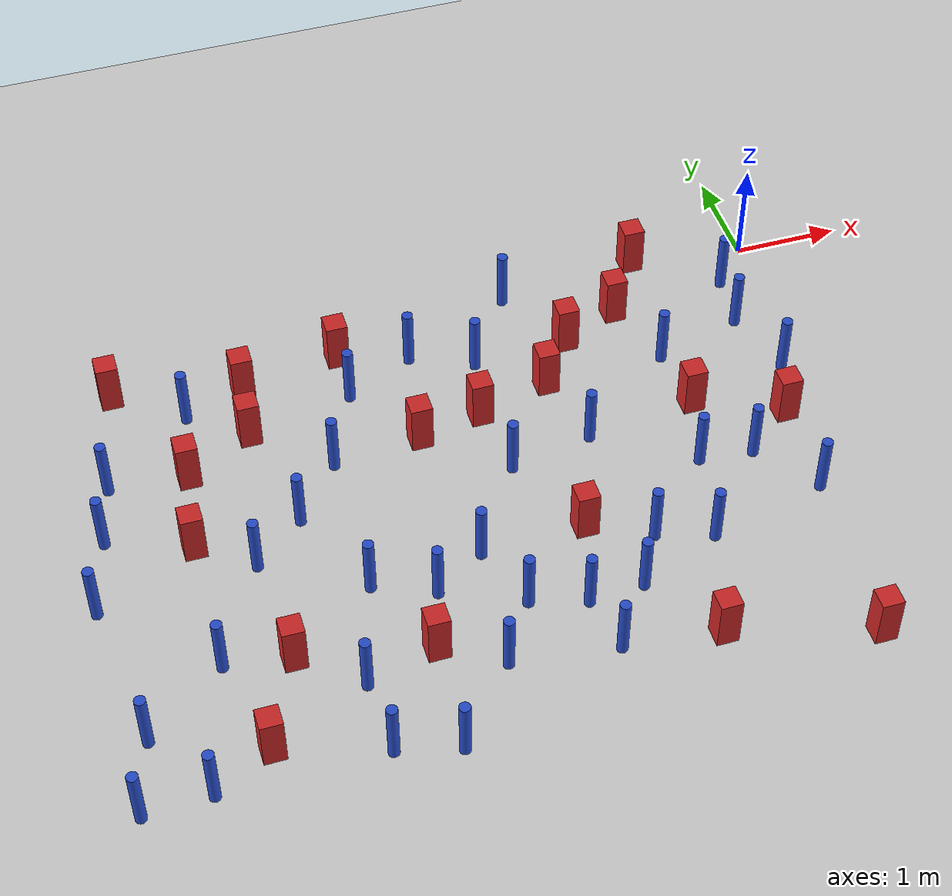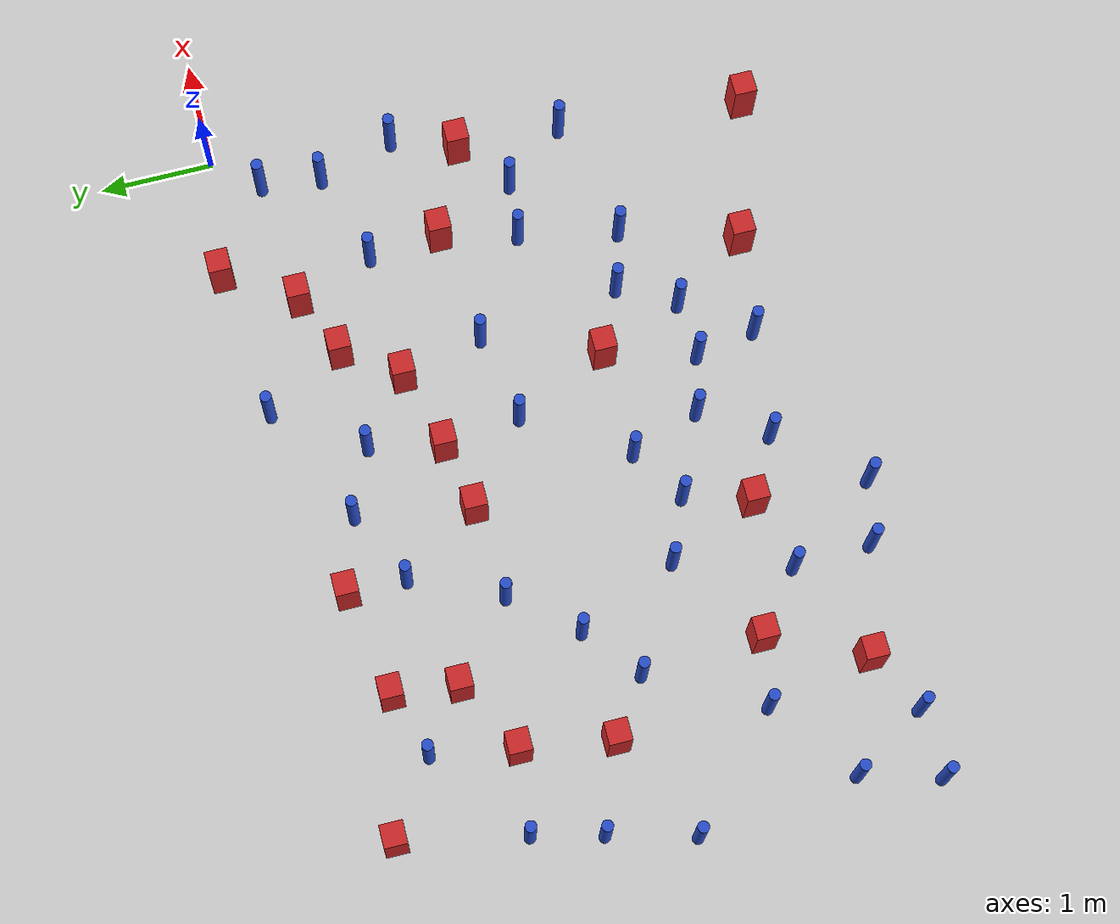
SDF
<sdf version="1.6">
 <world name="default">
  <model name="ground_plane">
   <static>1</static>
   <link name="link">
    <collision name="collision">
     <geometry><plane><normal>0 0 1</normal><size>100 100</size></plane></geometry>
     <surface><friction><ode><mu>100</mu><mu2>50</mu2></ode></friction></surface>
    </collision>
    <visual name="visual">
     <cast_shadows>0</cast_shadows>
     <geometry><plane><normal>0 0 1</normal><size>100 100</size></plane></geometry>
     <material>
      <ambient>1.0 1.0 1.0 1.0</ambient>
      <diffuse>0.8 0.8 0.8 1.0</diffuse>
      <specular>0.01 0.01 0.01 1.000000</specular>
     </material>
    </visual>
   </link>
  </model>
  <model name="pole_obstacle7">
   <static>true</static>
   <pose>-5.98293886818 -3.4617956946 7.38925637345e-09 -8.47170692798e-08 1.24976764937e-08 -1.74513093023e-07</pose>
   <link name="link">
    <pose>0 0 0.3 0 -0 0</pose>
    <inertial>
     <mass>1</mass>
     <inertia><ixx>0.145833</ixx><ixy>0</ixy><ixz>0</ixz><iyy>0.145833</iyy><iyz>0</iyz><izz>0.125</izz></inertia>
    </inertial>
    <collision name="collision">
     <geometry><cylinder><radius>0.05</radius><length>.6</length></cylinder></geometry>
    </collision>
    <visual name="visual">
     <geometry><cylinder><radius>0.05</radius><length>.6</length></cylinder></geometry>
     <material>
      <script><name>Gazebo/Blue</name><uri>file://media/materials/scripts/gazebo.material</uri></script>
     </material>
    </visual>
   </link>
  </model>
  <model name="square_post_obstacle9">
   <static>true</static>
   <pose>-2.40668371716 -1.18963300212 1.91545236811e-07 -7.35059704564e-06 1.12565212e-07 2.39332434364e-05</pose>
   <link name="link">
    <pose>0 0 0.25 0 -0 0</pose>
    <inertial>
     <mass>100</mass>
     <inertia>
      <ixx>0.166667</ixx>
      <ixy>0</ixy>
      <ixz>0</ixz>
      <iyy>0.166667</iyy>
      <iyz>0</iyz>
      <izz>0.166667</izz>
     </inertia>
    </inertial>
    <collision name="collision"><geometry><box><size>.2 .2 .5</size></box></geometry></collision>
    <visual name="visual">
     <geometry><box><size>.2 .2 .5</size></box></geometry>
     <material>
      <script><name>Gazebo/Red</name><uri>file://media/materials/scripts/gazebo.material</uri></script>
     </material>
    </visual>
   </link>
  </model>
  <model name="pole_obstacle18">
   <static>true</static>
   <pose>-4.05215169007 -3.24766723732 7.38925637345e-09 -8.47170692798e-08 1.24976764937e-08 -1.74513093023e-07</pose>
   <link name="link">
    <pose>0 0 0.3 0 -0 0</pose>
    <inertial>
     <mass>1</mass>
     <inertia><ixx>0.145833</ixx><ixy>0</ixy><ixz>0</ixz><iyy>0.145833</iyy><iyz>0</iyz><izz>0.125</izz></inertia>
    </inertial>
    <collision name="collision">
     <geometry><cylinder><radius>0.05</radius><length>.6</length></cylinder></geometry>
    </collision>
    <visual name="visual">
     <geometry><cylinder><radius>0.05</radius><length>.6</length></cylinder></geometry>
     <material>
      <script><name>Gazebo/Blue</name><uri>file://media/materials/scripts/gazebo.material</uri></script>
     </material>
    </visual>
   </link>
  </model>
  <model name="pole_obstacle27">
   <static>true</static>
   <pose>-2.4580968161 0.00251053062653 7.38925637345e-09 -8.47170692799e-08 1.24976765106e-08 -1.74513093016e-07</pose>
   <link name="link">
    <pose>0 0 0.3 0 -0 0</pose>
    <inertial>
     <mass>1</mass>
     <inertia><ixx>0.145833</ixx><ixy>0</ixy><ixz>0</ixz><iyy>0.145833</iyy><iyz>0</iyz><izz>0.125</izz></inertia>
    </inertial>
    <collision name="collision">
     <geometry><cylinder><radius>0.05</radius><length>.6</length></cylinder></geometry>
    </collision>
    <visual name="visual">
     <geometry><cylinder><radius>0.05</radius><length>.6</length></cylinder></geometry>
     <material>
      <script><name>Gazebo/Blue</name><uri>file://media/materials/scripts/gazebo.material</uri></script>
     </material>
    </visual>
   </link>
  </model>
  <model name="square_post_obstacle32">
   <static>true</static>
   <pose>-1.19804286031 -1.80554600768 1.91545236811e-07 -7.35059704564e-06 1.12565212e-07 2.39332434364e-05</pose>
   <link name="link">
    <pose>0 0 0.25 0 -0 0</pose>
    <inertial>
     <mass>100</mass>
     <inertia>
      <ixx>0.166667</ixx>
      <ixy>0</ixy>
      <ixz>0</ixz>
      <iyy>0.166667</iyy>
      <iyz>0</iyz>
      <izz>0.166667</izz>
     </inertia>
    </inertial>
    <collision name="collision"><geometry><box><size>.2 .2 .5</size></box></geometry></collision>
    <visual name="visual">
     <geometry><box><size>.2 .2 .5</size></box></geometry>
     <material>
      <script><name>Gazebo/Red</name><uri>file://media/materials/scripts/gazebo.material</uri></script>
     </material>
    </visual>
   </link>
  </model>
  <model name="pole_obstacle28">
   <static>true</static>
   <pose>-3.53265987745 -0.489491937113 7.38925637345e-09 -8.47170692795e-08 1.2497676475e-08 -1.74513093036e-07</pose>
   <link name="link">
    <pose>0 0 0.3 0 -0 0</pose>
    <inertial>
     <mass>1</mass>
     <inertia><ixx>0.145833</ixx><ixy>0</ixy><ixz>0</ixz><iyy>0.145833</iyy><iyz>0</iyz><izz>0.125</izz></inertia>
    </inertial>
    <collision name="collision">
     <geometry><cylinder><radius>0.05</radius><length>.6</length></cylinder></geometry>
    </collision>
    <visual name="visual">
     <geometry><cylinder><radius>0.05</radius><length>.6</length></cylinder></geometry>
     <material>
      <script><name>Gazebo/Blue</name><uri>file://media/materials/scripts/gazebo.material</uri></script>
     </material>
    </visual>
   </link>
  </model>
  <model name="square_post_obstacle34">
   <static>true</static>
   <pose>-3.71162440864 -1.49970045305 1.91545236811e-07 -7.35059704564e-06 1.12565212e-07 2.39332434364e-05</pose>
   <link name="link">
    <pose>0 0 0.25 0 -0 0</pose>
    <inertial>
     <mass>100</mass>
     <inertia>
      <ixx>0.166667</ixx>
      <ixy>0</ixy>
      <ixz>0</ixz>
      <iyy>0.166667</iyy>
      <iyz>0</iyz>
      <izz>0.166667</izz>
     </inertia>
    </inertial>
    <collision name="collision"><geometry><box><size>.2 .2 .5</size></box></geometry></collision>
    <visual name="visual">
     <geometry><box><size>.2 .2 .5</size></box></geometry>
     <material>
      <script><name>Gazebo/Red</name><uri>file://media/materials/scripts/gazebo.material</uri></script>
     </material>
    </visual>
   </link>
  </model>
  <model name="pole_obstacle30">
   <static>true</static>
   <pose>-0.873470017801 -2.5337336972 7.38925637345e-09 -8.47170692799e-08 1.2497676509e-08 -1.74513093016e-07</pose>
   <link name="link">
    <pose>0 0 0.3 0 -0 0</pose>
    <inertial>
     <mass>1</mass>
     <inertia><ixx>0.145833</ixx><ixy>0</ixy><ixz>0</ixz><iyy>0.145833</iyy><iyz>0</iyz><izz>0.125</izz></inertia>
    </inertial>
    <collision name="collision">
     <geometry><cylinder><radius>0.05</radius><length>.6</length></cylinder></geometry>
    </collision>
    <visual name="visual">
     <geometry><cylinder><radius>0.05</radius><length>.6</length></cylinder></geometry>
     <material>
      <script><name>Gazebo/Blue</name><uri>file://media/materials/scripts/gazebo.material</uri></script>
     </material>
    </visual>
   </link>
  </model>
  <model name="pole_obstacle34">
   <static>true</static>
   <pose>-4.98318007537 -2.11480700893 7.38925637345e-09 -8.47170692798e-08 1.24976764937e-08 -1.74513093023e-07</pose>
   <link name="link">
    <pose>0 0 0.3 0 -0 0</pose>
    <inertial>
     <mass>1</mass>
     <inertia><ixx>0.145833</ixx><ixy>0</ixy><ixz>0</ixz><iyy>0.145833</iyy><iyz>0</iyz><izz>0.125</izz></inertia>
    </inertial>
    <collision name="collision">
     <geometry><cylinder><radius>0.05</radius><length>.6</length></cylinder></geometry>
    </collision>
    <visual name="visual">
     <geometry><cylinder><radius>0.05</radius><length>.6</length></cylinder></geometry>
     <material>
      <script><name>Gazebo/Blue</name><uri>file://media/materials/scripts/gazebo.material</uri></script>
     </material>
    </visual>
   </link>
  </model>
  <model name="square_post_obstacle41">
   <static>true</static>
   <pose>-1.87766737156 -4.36688851102 1.91545236811e-07 -7.35059704564e-06 1.12565212e-07 2.39332434364e-05</pose>
   <link name="link">
    <pose>0 0 0.25 0 -0 0</pose>
    <inertial>
     <mass>100</mass>
     <inertia>
      <ixx>0.166667</ixx>
      <ixy>0</ixy>
      <ixz>0</ixz>
      <iyy>0.166667</iyy>
      <iyz>0</iyz>
      <izz>0.166667</izz>
     </inertia>
    </inertial>
    <collision name="collision"><geometry><box><size>.2 .2 .5</size></box></geometry></collision>
    <visual name="visual">
     <geometry><box><size>.2 .2 .5</size></box></geometry>
     <material>
      <script><name>Gazebo/Red</name><uri>file://media/materials/scripts/gazebo.material</uri></script>
     </material>
    </visual>
   </link>
  </model>
  <model name="square_post_obstacle43">
   <static>true</static>
   <pose>-4.23019213958 -3.818740897 1.91545236811e-07 -7.35059704564e-06 1.12565212e-07 2.39332434364e-05</pose>
   <link name="link">
    <pose>0 0 0.25 0 -0 0</pose>
    <inertial>
     <mass>100</mass>
     <inertia>
      <ixx>0.166667</ixx>
      <ixy>0</ixy>
      <ixz>0</ixz>
      <iyy>0.166667</iyy>
      <iyz>0</iyz>
      <izz>0.166667</izz>
     </inertia>
    </inertial>
    <collision name="collision"><geometry><box><size>.2 .2 .5</size></box></geometry></collision>
    <visual name="visual">
     <geometry><box><size>.2 .2 .5</size></box></geometry>
     <material>
      <script><name>Gazebo/Red</name><uri>file://media/materials/scripts/gazebo.material</uri></script>
     </material>
    </visual>
   </link>
  </model>
  <model name="square_post_obstacle45">
   <static>true</static>
   <pose>-0.41490647832 -2.15993403447 1.91545236811e-07 -7.35059704564e-06 1.12565212e-07 2.39332434364e-05</pose>
   <link name="link">
    <pose>0 0 0.25 0 -0 0</pose>
    <inertial>
     <mass>100</mass>
     <inertia>
      <ixx>0.166667</ixx>
      <ixy>0</ixy>
      <ixz>0</ixz>
      <iyy>0.166667</iyy>
      <iyz>0</iyz>
      <izz>0.166667</izz>
     </inertia>
    </inertial>
    <collision name="collision"><geometry><box><size>.2 .2 .5</size></box></geometry></collision>
    <visual name="visual">
     <geometry><box><size>.2 .2 .5</size></box></geometry>
     <material>
      <script><name>Gazebo/Red</name><uri>file://media/materials/scripts/gazebo.material</uri></script>
     </material>
    </visual>
   </link>
  </model>
  <model name="square_post_obstacle46">
   <static>true</static>
   <pose>-5.18639201142 -1.00821195334 1.91545236811e-07 -7.35059704564e-06 1.12565212e-07 2.39332434364e-05</pose>
   <link name="link">
    <pose>0 0 0.25 0 -0 0</pose>
    <inertial>
     <mass>100</mass>
     <inertia>
      <ixx>0.166667</ixx>
      <ixy>0</ixy>
      <ixz>0</ixz>
      <iyy>0.166667</iyy>
      <iyz>0</iyz>
      <izz>0.166667</izz>
     </inertia>
    </inertial>
    <collision name="collision"><geometry><box><size>.2 .2 .5</size></box></geometry></collision>
    <visual name="visual">
     <geometry><box><size>.2 .2 .5</size></box></geometry>
     <material>
      <script><name>Gazebo/Red</name><uri>file://media/materials/scripts/gazebo.material</uri></script>
     </material>
    </visual>
   </link>
  </model>
  <model name="square_post_obstacle47">
   <static>true</static>
   <pose>-1.4966445825 -0.473020046238 1.91545236811e-07 -7.35059704564e-06 1.12565212e-07 2.39332434364e-05</pose>
   <link name="link">
    <pose>0 0 0.25 0 -0 0</pose>
    <inertial>
     <mass>100</mass>
     <inertia>
      <ixx>0.166667</ixx>
      <ixy>0</ixy>
      <ixz>0</ixz>
      <iyy>0.166667</iyy>
      <iyz>0</iyz>
      <izz>0.166667</izz>
     </inertia>
    </inertial>
    <collision name="collision"><geometry><box><size>.2 .2 .5</size></box></geometry></collision>
    <visual name="visual">
     <geometry><box><size>.2 .2 .5</size></box></geometry>
     <material>
      <script><name>Gazebo/Red</name><uri>file://media/materials/scripts/gazebo.material</uri></script>
     </material>
    </visual>
   </link>
  </model>
  <model name="square_post_obstacle48">
   <static>true</static>
   <pose>-2.61783843514 -2.92103600527 1.91545236811e-07 -7.35059704564e-06 1.12565212e-07 2.39332434364e-05</pose>
   <link name="link">
    <pose>0 0 0.25 0 -0 0</pose>
    <inertial>
     <mass>100</mass>
     <inertia>
      <ixx>0.166667</ixx>
      <ixy>0</ixy>
      <ixz>0</ixz>
      <iyy>0.166667</iyy>
      <iyz>0</iyz>
      <izz>0.166667</izz>
     </inertia>
    </inertial>
    <collision name="collision"><geometry><box><size>.2 .2 .5</size></box></geometry></collision>
    <visual name="visual">
     <geometry><box><size>.2 .2 .5</size></box></geometry>
     <material>
      <script><name>Gazebo/Red</name><uri>file://media/materials/scripts/gazebo.material</uri></script>
     </material>
    </visual>
   </link>
  </model>
  <model name="pole_obstacle47">
   <static>true</static>
   <pose>-1.37140886564 -2.48302137708 7.38925637345e-09 -8.47170692799e-08 1.24976765053e-08 -1.74513093017e-07</pose>
   <link name="link">
    <pose>0 0 0.3 0 -0 0</pose>
    <inertial>
     <mass>1</mass>
     <inertia><ixx>0.145833</ixx><ixy>0</ixy><ixz>0</ixz><iyy>0.145833</iyy><iyz>0</iyz><izz>0.125</izz></inertia>
    </inertial>
    <collision name="collision">
     <geometry><cylinder><radius>0.05</radius><length>.6</length></cylinder></geometry>
    </collision>
    <visual name="visual">
     <geometry><cylinder><radius>0.05</radius><length>.6</length></cylinder></geometry>
     <material>
      <script><name>Gazebo/Blue</name><uri>file://media/materials/scripts/gazebo.material</uri></script>
     </material>
    </visual>
   </link>
  </model>
  <model name="square_post_obstacle59">
   <static>true</static>
   <pose>-0.601001895894 -4.74391383272 1.91545236811e-07 -7.35059704564e-06 1.12565212e-07 2.39332434364e-05</pose>
   <link name="link">
    <pose>0 0 0.25 0 -0 0</pose>
    <inertial>
     <mass>100</mass>
     <inertia>
      <ixx>0.166667</ixx>
      <ixy>0</ixy>
      <ixz>0</ixz>
      <iyy>0.166667</iyy>
      <iyz>0</iyz>
      <izz>0.166667</izz>
     </inertia>
    </inertial>
    <collision name="collision"><geometry><box><size>.2 .2 .5</size></box></geometry></collision>
    <visual name="visual">
     <geometry><box><size>.2 .2 .5</size></box></geometry>
     <material>
      <script><name>Gazebo/Red</name><uri>file://media/materials/scripts/gazebo.material</uri></script>
     </material>
    </visual>
   </link>
  </model>
  <model name="pole_obstacle59">
   <static>true</static>
   <pose>-0.351153763004 -0.387395627128 7.38925637345e-09 -8.471706928e-08 1.24976765138e-08 -1.74513093013e-07</pose>
   <link name="link">
    <pose>0 0 0.3 0 -0 0</pose>
    <inertial>
     <mass>1</mass>
     <inertia><ixx>0.145833</ixx><ixy>0</ixy><ixz>0</ixz><iyy>0.145833</iyy><iyz>0</iyz><izz>0.125</izz></inertia>
    </inertial>
    <collision name="collision">
     <geometry><cylinder><radius>0.05</radius><length>.6</length></cylinder></geometry>
    </collision>
    <visual name="visual">
     <geometry><cylinder><radius>0.05</radius><length>.6</length></cylinder></geometry>
     <material>
      <script><name>Gazebo/Blue</name><uri>file://media/materials/scripts/gazebo.material</uri></script>
     </material>
    </visual>
   </link>
  </model>
  <model name="pole_obstacle60">
   <static>true</static>
   <pose>-4.87875570688 -3.99607306524 7.38925637345e-09 -8.47170692799e-08 1.24976764984e-08 -1.7451309302e-07</pose>
   <link name="link">
    <pose>0 0 0.3 0 -0 0</pose>
    <inertial>
     <mass>1</mass>
     <inertia><ixx>0.145833</ixx><ixy>0</ixy><ixz>0</ixz><iyy>0.145833</iyy><iyz>0</iyz><izz>0.125</izz></inertia>
    </inertial>
    <collision name="collision">
     <geometry><cylinder><radius>0.05</radius><length>.6</length></cylinder></geometry>
    </collision>
    <visual name="visual">
     <geometry><cylinder><radius>0.05</radius><length>.6</length></cylinder></geometry>
     <material>
      <script><name>Gazebo/Blue</name><uri>file://media/materials/scripts/gazebo.material</uri></script>
     </material>
    </visual>
   </link>
  </model>
  <model name="square_post_obstacle67">
   <static>true</static>
   <pose>-5.77691185398 -4.39747649946 1.91545236811e-07 -7.35059704564e-06 1.12565212e-07 2.39332434364e-05</pose>
   <link name="link">
    <pose>0 0 0.25 0 -0 0</pose>
    <inertial>
     <mass>100</mass>
     <inertia>
      <ixx>0.166667</ixx>
      <ixy>0</ixy>
      <ixz>0</ixz>
      <iyy>0.166667</iyy>
      <iyz>0</iyz>
      <izz>0.166667</izz>
     </inertia>
    </inertial>
    <collision name="collision"><geometry><box><size>.2 .2 .5</size></box></geometry></collision>
    <visual name="visual">
     <geometry><box><size>.2 .2 .5</size></box></geometry>
     <material>
      <script><name>Gazebo/Red</name><uri>file://media/materials/scripts/gazebo.material</uri></script>
     </material>
    </visual>
   </link>
  </model>
  <model name="pole_obstacle66">
   <static>true</static>
   <pose>-6.53668276613 -1.26534742744 7.38925637345e-09 -8.471706928e-08 1.24976765134e-08 -1.74513093015e-07</pose>
   <link name="link">
    <pose>0 0 0.3 0 -0 0</pose>
    <inertial>
     <mass>1</mass>
     <inertia><ixx>0.145833</ixx><ixy>0</ixy><ixz>0</ixz><iyy>0.145833</iyy><iyz>0</iyz><izz>0.125</izz></inertia>
    </inertial>
    <collision name="collision">
     <geometry><cylinder><radius>0.05</radius><length>.6</length></cylinder></geometry>
    </collision>
    <visual name="visual">
     <geometry><cylinder><radius>0.05</radius><length>.6</length></cylinder></geometry>
     <material>
      <script><name>Gazebo/Blue</name><uri>file://media/materials/scripts/gazebo.material</uri></script>
     </material>
    </visual>
   </link>
  </model>
  <model name="pole_obstacle70">
   <static>true</static>
   <pose>-6.6820766883 -1.86449149913 7.38925637345e-09 -8.471706928e-08 1.24976765134e-08 -1.74513093015e-07</pose>
   <link name="link">
    <pose>0 0 0.3 0 -0 0</pose>
    <inertial>
     <mass>1</mass>
     <inertia><ixx>0.145833</ixx><ixy>0</ixy><ixz>0</ixz><iyy>0.145833</iyy><iyz>0</iyz><izz>0.125</izz></inertia>
    </inertial>
    <collision name="collision">
     <geometry><cylinder><radius>0.05</radius><length>.6</length></cylinder></geometry>
    </collision>
    <visual name="visual">
     <geometry><cylinder><radius>0.05</radius><length>.6</length></cylinder></geometry>
     <material>
      <script><name>Gazebo/Blue</name><uri>file://media/materials/scripts/gazebo.material</uri></script>
     </material>
    </visual>
   </link>
  </model>
  <model name="pole_obstacle84">
   <static>true</static>
   <pose>-4.29041441861 -4.83380787265 7.38925637345e-09 -8.47170692796e-08 1.24976764786e-08 -1.74513093032e-07</pose>
   <link name="link">
    <pose>0 0 0.3 0 -0 0</pose>
    <inertial>
     <mass>1</mass>
     <inertia><ixx>0.145833</ixx><ixy>0</ixy><ixz>0</ixz><iyy>0.145833</iyy><iyz>0</iyz><izz>0.125</izz></inertia>
    </inertial>
    <collision name="collision">
     <geometry><cylinder><radius>0.05</radius><length>.6</length></cylinder></geometry>
    </collision>
    <visual name="visual">
     <geometry><cylinder><radius>0.05</radius><length>.6</length></cylinder></geometry>
     <material>
      <script><name>Gazebo/Blue</name><uri>file://media/materials/scripts/gazebo.material</uri></script>
     </material>
    </visual>
   </link>
  </model>
  <model name="pole_obstacle86">
   <static>true</static>
   <pose>-2.22975831049 -1.92784280902 7.38925637345e-09 -8.471706928e-08 1.24976765152e-08 -1.74513093012e-07</pose>
   <link name="link">
    <pose>0 0 0.3 0 -0 0</pose>
    <inertial>
     <mass>1</mass>
     <inertia><ixx>0.145833</ixx><ixy>0</ixy><ixz>0</ixz><iyy>0.145833</iyy><iyz>0</iyz><izz>0.125</izz></inertia>
    </inertial>
    <collision name="collision">
     <geometry><cylinder><radius>0.05</radius><length>.6</length></cylinder></geometry>
    </collision>
    <visual name="visual">
     <geometry><cylinder><radius>0.05</radius><length>.6</length></cylinder></geometry>
     <material>
      <script><name>Gazebo/Blue</name><uri>file://media/materials/scripts/gazebo.material</uri></script>
     </material>
    </visual>
   </link>
  </model>
  <model name="pole_obstacle89">
   <static>true</static>
   <pose>-2.74272341753 -4.25601248882 7.38925637345e-09 -8.47170692798e-08 1.24976765033e-08 -1.74513093019e-07</pose>
   <link name="link">
    <pose>0 0 0.3 0 -0 0</pose>
    <inertial>
     <mass>1</mass>
     <inertia><ixx>0.145833</ixx><ixy>0</ixy><ixz>0</ixz><iyy>0.145833</iyy><iyz>0</iyz><izz>0.125</izz></inertia>
    </inertial>
    <collision name="collision">
     <geometry><cylinder><radius>0.05</radius><length>.6</length></cylinder></geometry>
    </collision>
    <visual name="visual">
     <geometry><cylinder><radius>0.05</radius><length>.6</length></cylinder></geometry>
     <material>
      <script><name>Gazebo/Blue</name><uri>file://media/materials/scripts/gazebo.material</uri></script>
     </material>
    </visual>
   </link>
  </model>
  <model name="pole_obstacle97">
   <static>true</static>
   <pose>-3.01338741697 -2.07553328215 7.38925637345e-09 -8.47170692798e-08 1.24976764939e-08 -1.74513093025e-07</pose>
   <link name="link">
    <pose>0 0 0.3 0 -0 0</pose>
    <inertial>
     <mass>1</mass>
     <inertia><ixx>0.145833</ixx><ixy>0</ixy><ixz>0</ixz><iyy>0.145833</iyy><iyz>0</iyz><izz>0.125</izz></inertia>
    </inertial>
    <collision name="collision">
     <geometry><cylinder><radius>0.05</radius><length>.6</length></cylinder></geometry>
    </collision>
    <visual name="visual">
     <geometry><cylinder><radius>0.05</radius><length>.6</length></cylinder></geometry>
     <material>
      <script><name>Gazebo/Blue</name><uri>file://media/materials/scripts/gazebo.material</uri></script>
     </material>
    </visual>
   </link>
  </model>
  <model name="pole_obstacle98">
   <static>true</static>
   <pose>-2.95862641718 -0.743944591441 7.38925637345e-09 -8.471706928e-08 1.24976765177e-08 -1.74513093012e-07</pose>
   <link name="link">
    <pose>0 0 0.3 0 -0 0</pose>
    <inertial>
     <mass>1</mass>
     <inertia><ixx>0.145833</ixx><ixy>0</ixy><ixz>0</ixz><iyy>0.145833</iyy><iyz>0</iyz><izz>0.125</izz></inertia>
    </inertial>
    <collision name="collision">
     <geometry><cylinder><radius>0.05</radius><length>.6</length></cylinder></geometry>
    </collision>
    <visual name="visual">
     <geometry><cylinder><radius>0.05</radius><length>.6</length></cylinder></geometry>
     <material>
      <script><name>Gazebo/Blue</name><uri>file://media/materials/scripts/gazebo.material</uri></script>
     </material>
    </visual>
   </link>
  </model>
  <model name="square_post_obstacle97">
   <static>true</static>
   <pose>-5.81845519719 -1.34763495739 1.91545236811e-07 -7.35059704564e-06 1.12565212e-07 2.39332434364e-05</pose>
   <link name="link">
    <pose>0 0 0.25 0 -0 0</pose>
    <inertial>
     <mass>100</mass>
     <inertia>
      <ixx>0.166667</ixx>
      <ixy>0</ixy>
      <ixz>0</ixz>
      <iyy>0.166667</iyy>
      <iyz>0</iyz>
      <izz>0.166667</izz>
     </inertia>
    </inertial>
    <collision name="collision"><geometry><box><size>.2 .2 .5</size></box></geometry></collision>
    <visual name="visual">
     <geometry><box><size>.2 .2 .5</size></box></geometry>
     <material>
      <script><name>Gazebo/Red</name><uri>file://media/materials/scripts/gazebo.material</uri></script>
     </material>
    </visual>
   </link>
  </model>
  <model name="pole_obstacle112">
   <static>true</static>
   <pose>-1.55759582702 -3.35422356552 7.38925637345e-09 -8.47170692799e-08 1.24976765053e-08 -1.74513093017e-07</pose>
   <link name="link">
    <pose>0 0 0.3 0 -0 0</pose>
    <inertial>
     <mass>1</mass>
     <inertia><ixx>0.145833</ixx><ixy>0</ixy><ixz>0</ixz><iyy>0.145833</iyy><iyz>0</iyz><izz>0.125</izz></inertia>
    </inertial>
    <collision name="collision">
     <geometry><cylinder><radius>0.05</radius><length>.6</length></cylinder></geometry>
    </collision>
    <visual name="visual">
     <geometry><cylinder><radius>0.05</radius><length>.6</length></cylinder></geometry>
     <material>
      <script><name>Gazebo/Blue</name><uri>file://media/materials/scripts/gazebo.material</uri></script>
     </material>
    </visual>
   </link>
  </model>
  <model name="square_post_obstacle101">
   <static>true</static>
   <pose>-3.10466760344 -1.38304299307 1.91545236811e-07 -7.35059704564e-06 1.12565212e-07 2.39332434364e-05</pose>
   <link name="link">
    <pose>0 0 0.25 0 -0 0</pose>
    <inertial>
     <mass>100</mass>
     <inertia>
      <ixx>0.166667</ixx>
      <ixy>0</ixy>
      <ixz>0</ixz>
      <iyy>0.166667</iyy>
      <iyz>0</iyz>
      <izz>0.166667</izz>
     </inertia>
    </inertial>
    <collision name="collision"><geometry><box><size>.2 .2 .5</size></box></geometry></collision>
    <visual name="visual">
     <geometry><box><size>.2 .2 .5</size></box></geometry>
     <material>
      <script><name>Gazebo/Red</name><uri>file://media/materials/scripts/gazebo.material</uri></script>
     </material>
    </visual>
   </link>
  </model>
  <model name="pole_obstacle129">
   <static>true</static>
   <pose>-1.25461855972 -1.16741890524 7.38925637345e-09 -8.471706928e-08 1.24976765079e-08 -1.74513093017e-07</pose>
   <link name="link">
    <pose>0 0 0.3 0 -0 0</pose>
    <inertial>
     <mass>1</mass>
     <inertia><ixx>0.145833</ixx><ixy>0</ixy><ixz>0</ixz><iyy>0.145833</iyy><iyz>0</iyz><izz>0.125</izz></inertia>
    </inertial>
    <collision name="collision">
     <geometry><cylinder><radius>0.05</radius><length>.6</length></cylinder></geometry>
    </collision>
    <visual name="visual">
     <geometry><cylinder><radius>0.05</radius><length>.6</length></cylinder></geometry>
     <material>
      <script><name>Gazebo/Blue</name><uri>file://media/materials/scripts/gazebo.material</uri></script>
     </material>
    </visual>
   </link>
  </model>
  <model name="pole_obstacle130">
   <static>true</static>
   <pose>-6.91042631117 -4.69608250043 7.38925637345e-09 -8.47170692796e-08 1.24976764786e-08 -1.74513093032e-07</pose>
   <link name="link">
    <pose>0 0 0.3 0 -0 0</pose>
    <inertial>
     <mass>1</mass>
     <inertia><ixx>0.145833</ixx><ixy>0</ixy><ixz>0</ixz><iyy>0.145833</iyy><iyz>0</iyz><izz>0.125</izz></inertia>
    </inertial>
    <collision name="collision">
     <geometry><cylinder><radius>0.05</radius><length>.6</length></cylinder></geometry>
    </collision>
    <visual name="visual">
     <geometry><cylinder><radius>0.05</radius><length>.6</length></cylinder></geometry>
     <material>
      <script><name>Gazebo/Blue</name><uri>file://media/materials/scripts/gazebo.material</uri></script>
     </material>
    </visual>
   </link>
  </model>
  <model name="pole_obstacle134">
   <static>true</static>
   <pose>-0.414438927736 -0.921310721657 7.38925637345e-09 -8.47170692799e-08 1.24976765033e-08 -1.74513093019e-07</pose>
   <link name="link">
    <pose>0 0 0.3 0 -0 0</pose>
    <inertial>
     <mass>1</mass>
     <inertia><ixx>0.145833</ixx><ixy>0</ixy><ixz>0</ixz><iyy>0.145833</iyy><iyz>0</iyz><izz>0.125</izz></inertia>
    </inertial>
    <collision name="collision">
     <geometry><cylinder><radius>0.05</radius><length>.6</length></cylinder></geometry>
    </collision>
    <visual name="visual">
     <geometry><cylinder><radius>0.05</radius><length>.6</length></cylinder></geometry>
     <material>
      <script><name>Gazebo/Blue</name><uri>file://media/materials/scripts/gazebo.material</uri></script>
     </material>
    </visual>
   </link>
  </model>
  <model name="square_post_obstacle118">
   <static>true</static>
   <pose>-4.17862811358 -0.27668775063 1.91545236811e-07 -7.35059704564e-06 1.12565212e-07 2.39332434364e-05</pose>
   <link name="link">
    <pose>0 0 0.25 0 -0 0</pose>
    <inertial>
     <mass>100</mass>
     <inertia>
      <ixx>0.166667</ixx>
      <ixy>0</ixy>
      <ixz>0</ixz>
      <iyy>0.166667</iyy>
      <iyz>0</iyz>
      <izz>0.166667</izz>
     </inertia>
    </inertial>
    <collision name="collision"><geometry><box><size>.2 .2 .5</size></box></geometry></collision>
    <visual name="visual">
     <geometry><box><size>.2 .2 .5</size></box></geometry>
     <material>
      <script><name>Gazebo/Red</name><uri>file://media/materials/scripts/gazebo.material</uri></script>
     </material>
    </visual>
   </link>
  </model>
  <model name="pole_obstacle140">
   <static>true</static>
   <pose>-2.84614132667 -3.71808928514 7.38925637345e-09 -8.47170692798e-08 1.24976764939e-08 -1.74513093025e-07</pose>
   <link name="link">
    <pose>0 0 0.3 0 -0 0</pose>
    <inertial>
     <mass>1</mass>
     <inertia><ixx>0.145833</ixx><ixy>0</ixy><ixz>0</ixz><iyy>0.145833</iyy><iyz>0</iyz><izz>0.125</izz></inertia>
    </inertial>
    <collision name="collision">
     <geometry><cylinder><radius>0.05</radius><length>.6</length></cylinder></geometry>
    </collision>
    <visual name="visual">
     <geometry><cylinder><radius>0.05</radius><length>.6</length></cylinder></geometry>
     <material>
      <script><name>Gazebo/Blue</name><uri>file://media/materials/scripts/gazebo.material</uri></script>
     </material>
    </visual>
   </link>
  </model>
  <model name="pole_obstacle142">
   <static>true</static>
   <pose>-4.58802723266 -3.01317855146 7.38925637345e-09 -8.47170692798e-08 1.24976764937e-08 -1.74513093023e-07</pose>
   <link name="link">
    <pose>0 0 0.3 0 -0 0</pose>
    <inertial>
     <mass>1</mass>
     <inertia><ixx>0.145833</ixx><ixy>0</ixy><ixz>0</ixz><iyy>0.145833</iyy><iyz>0</iyz><izz>0.125</izz></inertia>
    </inertial>
    <collision name="collision">
     <geometry><cylinder><radius>0.05</radius><length>.6</length></cylinder></geometry>
    </collision>
    <visual name="visual">
     <geometry><cylinder><radius>0.05</radius><length>.6</length></cylinder></geometry>
     <material>
      <script><name>Gazebo/Blue</name><uri>file://media/materials/scripts/gazebo.material</uri></script>
     </material>
    </visual>
   </link>
  </model>
  <model name="pole_obstacle152">
   <static>true</static>
   <pose>-3.70114224907 -4.13184910833 7.38925637345e-09 -8.47170692794e-08 1.24976764468e-08 -1.7451309304e-07</pose>
   <link name="link">
    <pose>0 0 0.3 0 -0 0</pose>
    <inertial>
     <mass>1</mass>
     <inertia><ixx>0.145833</ixx><ixy>0</ixy><ixz>0</ixz><iyy>0.145833</iyy><iyz>0</iyz><izz>0.125</izz></inertia>
    </inertial>
    <collision name="collision">
     <geometry><cylinder><radius>0.05</radius><length>.6</length></cylinder></geometry>
    </collision>
    <visual name="visual">
     <geometry><cylinder><radius>0.05</radius><length>.6</length></cylinder></geometry>
     <material>
      <script><name>Gazebo/Blue</name><uri>file://media/materials/scripts/gazebo.material</uri></script>
     </material>
    </visual>
   </link>
  </model>
  <model name="pole_obstacle154">
   <static>true</static>
   <pose>-6.31183088559 -4.6746008567 7.38925637345e-09 -8.47170692796e-08 1.24976764786e-08 -1.74513093032e-07</pose>
   <link name="link">
    <pose>0 0 0.3 0 -0 0</pose>
    <inertial>
     <mass>1</mass>
     <inertia><ixx>0.145833</ixx><ixy>0</ixy><ixz>0</ixz><iyy>0.145833</iyy><iyz>0</iyz><izz>0.125</izz></inertia>
    </inertial>
    <collision name="collision">
     <geometry><cylinder><radius>0.05</radius><length>.6</length></cylinder></geometry>
    </collision>
    <visual name="visual">
     <geometry><cylinder><radius>0.05</radius><length>.6</length></cylinder></geometry>
     <material>
      <script><name>Gazebo/Blue</name><uri>file://media/materials/scripts/gazebo.material</uri></script>
     </material>
    </visual>
   </link>
  </model>
  <model name="square_post_obstacle144">
   <static>true</static>
   <pose>-1.10549614656 0.134806922653 1.91545236811e-07 -7.35059704564e-06 1.12565212e-07 2.39332434364e-05</pose>
   <link name="link">
    <pose>0 0 0.25 0 -0 0</pose>
    <inertial>
     <mass>100</mass>
     <inertia>
      <ixx>0.166667</ixx>
      <ixy>0</ixy>
      <ixz>0</ixz>
      <iyy>0.166667</iyy>
      <iyz>0</iyz>
      <izz>0.166667</izz>
     </inertia>
    </inertial>
    <collision name="collision"><geometry><box><size>.2 .2 .5</size></box></geometry></collision>
    <visual name="visual">
     <geometry><box><size>.2 .2 .5</size></box></geometry>
     <material>
      <script><name>Gazebo/Red</name><uri>file://media/materials/scripts/gazebo.material</uri></script>
     </material>
    </visual>
   </link>
  </model>
  <model name="pole_obstacle160">
   <static>true</static>
   <pose>-5.46163638457 -2.50403210512 7.38925637345e-09 -8.47170692798e-08 1.24976764937e-08 -1.74513093023e-07</pose>
   <link name="link">
    <pose>0 0 0.3 0 -0 0</pose>
    <inertial>
     <mass>1</mass>
     <inertia><ixx>0.145833</ixx><ixy>0</ixy><ixz>0</ixz><iyy>0.145833</iyy><iyz>0</iyz><izz>0.125</izz></inertia>
    </inertial>
    <collision name="collision">
     <geometry><cylinder><radius>0.05</radius><length>.6</length></cylinder></geometry>
    </collision>
    <visual name="visual">
     <geometry><cylinder><radius>0.05</radius><length>.6</length></cylinder></geometry>
     <material>
      <script><name>Gazebo/Blue</name><uri>file://media/materials/scripts/gazebo.material</uri></script>
     </material>
    </visual>
   </link>
  </model>
  <model name="pole_obstacle170">
   <static>true</static>
   <pose>-3.34624052669 -3.56944485367 7.38925637345e-09 -8.47170692798e-08 1.24976764939e-08 -1.74513093025e-07</pose>
   <link name="link">
    <pose>0 0 0.3 0 -0 0</pose>
    <inertial>
     <mass>1</mass>
     <inertia><ixx>0.145833</ixx><ixy>0</ixy><ixz>0</ixz><iyy>0.145833</iyy><iyz>0</iyz><izz>0.125</izz></inertia>
    </inertial>
    <collision name="collision">
     <geometry><cylinder><radius>0.05</radius><length>.6</length></cylinder></geometry>
    </collision>
    <visual name="visual">
     <geometry><cylinder><radius>0.05</radius><length>.6</length></cylinder></geometry>
     <material>
      <script><name>Gazebo/Blue</name><uri>file://media/materials/scripts/gazebo.material</uri></script>
     </material>
    </visual>
   </link>
  </model>
  <model name="square_post_obstacle161">
   <static>true</static>
   <pose>-5.11757220716 -0.434603657104 1.91545236811e-07 -7.35059704564e-06 1.12565212e-07 2.39332434364e-05</pose>
   <link name="link">
    <pose>0 0 0.25 0 -0 0</pose>
    <inertial>
     <mass>100</mass>
     <inertia>
      <ixx>0.166667</ixx>
      <ixy>0</ixy>
      <ixz>0</ixz>
      <iyy>0.166667</iyy>
      <iyz>0</iyz>
      <izz>0.166667</izz>
     </inertia>
    </inertial>
    <collision name="collision"><geometry><box><size>.2 .2 .5</size></box></geometry></collision>
    <visual name="visual">
     <geometry><box><size>.2 .2 .5</size></box></geometry>
     <material>
      <script><name>Gazebo/Red</name><uri>file://media/materials/scripts/gazebo.material</uri></script>
     </material>
    </visual>
   </link>
  </model>
  <model name="square_post_obstacle162">
   <static>true</static>
   <pose>-5.94244536222 -2.15615841353 1.91545236811e-07 -7.35059704564e-06 1.12565212e-07 2.39332434364e-05</pose>
   <link name="link">
    <pose>0 0 0.25 0 -0 0</pose>
    <inertial>
     <mass>100</mass>
     <inertia>
      <ixx>0.166667</ixx>
      <ixy>0</ixy>
      <ixz>0</ixz>
      <iyy>0.166667</iyy>
      <iyz>0</iyz>
      <izz>0.166667</izz>
     </inertia>
    </inertial>
    <collision name="collision"><geometry><box><size>.2 .2 .5</size></box></geometry></collision>
    <visual name="visual">
     <geometry><box><size>.2 .2 .5</size></box></geometry>
     <material>
      <script><name>Gazebo/Red</name><uri>file://media/materials/scripts/gazebo.material</uri></script>
     </material>
    </visual>
   </link>
  </model>
  <model name="pole_obstacle176">
   <static>true</static>
   <pose>-4.53539039452 -1.56890567171 7.38925637345e-09 -8.471706928e-08 1.24976765134e-08 -1.74513093015e-07</pose>
   <link name="link">
    <pose>0 0 0.3 0 -0 0</pose>
    <inertial>
     <mass>1</mass>
     <inertia><ixx>0.145833</ixx><ixy>0</ixy><ixz>0</ixz><iyy>0.145833</iyy><iyz>0</iyz><izz>0.125</izz></inertia>
    </inertial>
    <collision name="collision">
     <geometry><cylinder><radius>0.05</radius><length>.6</length></cylinder></geometry>
    </collision>
    <visual name="visual">
     <geometry><cylinder><radius>0.05</radius><length>.6</length></cylinder></geometry>
     <material>
      <script><name>Gazebo/Blue</name><uri>file://media/materials/scripts/gazebo.material</uri></script>
     </material>
    </visual>
   </link>
  </model>
  <model name="pole_obstacle177">
   <static>true</static>
   <pose>-4.18536144372 -0.793819692003 7.38925637345e-09 -8.47170692799e-08 1.24976765038e-08 -1.74513093018e-07</pose>
   <link name="link">
    <pose>0 0 0.3 0 -0 0</pose>
    <inertial>
     <mass>1</mass>
     <inertia><ixx>0.145833</ixx><ixy>0</ixy><ixz>0</ixz><iyy>0.145833</iyy><iyz>0</iyz><izz>0.125</izz></inertia>
    </inertial>
    <collision name="collision">
     <geometry><cylinder><radius>0.05</radius><length>.6</length></cylinder></geometry>
    </collision>
    <visual name="visual">
     <geometry><cylinder><radius>0.05</radius><length>.6</length></cylinder></geometry>
     <material>
      <script><name>Gazebo/Blue</name><uri>file://media/materials/scripts/gazebo.material</uri></script>
     </material>
    </visual>
   </link>
  </model>
  <model name="pole_obstacle178">
   <static>true</static>
   <pose>-5.69067346097 -0.618697259826 7.38925637345e-09 -8.47170692799e-08 1.24976765038e-08 -1.74513093018e-07</pose>
   <link name="link">
    <pose>0 0 0.3 0 -0 0</pose>
    <inertial>
     <mass>1</mass>
     <inertia><ixx>0.145833</ixx><ixy>0</ixy><ixz>0</ixz><iyy>0.145833</iyy><iyz>0</iyz><izz>0.125</izz></inertia>
    </inertial>
    <collision name="collision">
     <geometry><cylinder><radius>0.05</radius><length>.6</length></cylinder></geometry>
    </collision>
    <visual name="visual">
     <geometry><cylinder><radius>0.05</radius><length>.6</length></cylinder></geometry>
     <material>
      <script><name>Gazebo/Blue</name><uri>file://media/materials/scripts/gazebo.material</uri></script>
     </material>
    </visual>
   </link>
  </model>
  <model name="pole_obstacle184">
   <static>true</static>
   <pose>-6.88071475029 -2.60728680885 7.38925637345e-09 -8.47170692798e-08 1.24976764937e-08 -1.74513093023e-07</pose>
   <link name="link">
    <pose>0 0 0.3 0 -0 0</pose>
    <inertial>
     <mass>1</mass>
     <inertia><ixx>0.145833</ixx><ixy>0</ixy><ixz>0</ixz><iyy>0.145833</iyy><iyz>0</iyz><izz>0.125</izz></inertia>
    </inertial>
    <collision name="collision">
     <geometry><cylinder><radius>0.05</radius><length>.6</length></cylinder></geometry>
    </collision>
    <visual name="visual">
     <geometry><cylinder><radius>0.05</radius><length>.6</length></cylinder></geometry>
     <material>
      <script><name>Gazebo/Blue</name><uri>file://media/materials/scripts/gazebo.material</uri></script>
     </material>
    </visual>
   </link>
  </model>
  <model name="square_post_obstacle182">
   <static>true</static>
   <pose>-6.30859321242 -0.180294870398 1.91545236811e-07 -7.35059704564e-06 1.12565212e-07 2.39332434364e-05</pose>
   <link name="link">
    <pose>0 0 0.25 0 -0 0</pose>
    <inertial>
     <mass>100</mass>
     <inertia>
      <ixx>0.166667</ixx>
      <ixy>0</ixy>
      <ixz>0</ixz>
      <iyy>0.166667</iyy>
      <iyz>0</iyz>
      <izz>0.166667</izz>
     </inertia>
    </inertial>
    <collision name="collision"><geometry><box><size>.2 .2 .5</size></box></geometry></collision>
    <visual name="visual">
     <geometry><box><size>.2 .2 .5</size></box></geometry>
     <material>
      <script><name>Gazebo/Red</name><uri>file://media/materials/scripts/gazebo.material</uri></script>
     </material>
    </visual>
   </link>
  </model>
  <model name="square_post_obstacle188">
   <static>true</static>
   <pose>-2.05575496285 -0.708670355427 1.91545236811e-07 -7.35059704564e-06 1.12565212e-07 2.39332434364e-05</pose>
   <link name="link">
    <pose>0 0 0.25 0 -0 0</pose>
    <inertial>
     <mass>100</mass>
     <inertia>
      <ixx>0.166667</ixx>
      <ixy>0</ixy>
      <ixz>0</ixz>
      <iyy>0.166667</iyy>
      <iyz>0</iyz>
      <izz>0.166667</izz>
     </inertia>
    </inertial>
    <collision name="collision"><geometry><box><size>.2 .2 .5</size></box></geometry></collision>
    <visual name="visual">
     <geometry><box><size>.2 .2 .5</size></box></geometry>
     <material>
      <script><name>Gazebo/Red</name><uri>file://media/materials/scripts/gazebo.material</uri></script>
     </material>
    </visual>
   </link>
  </model>
  <model name="square_post_obstacle192">
   <static>true</static>
   <pose>-5.3959669798 -3.56827196705 1.91545236811e-07 -7.35059704564e-06 1.12565212e-07 2.39332434364e-05</pose>
   <link name="link">
    <pose>0 0 0.25 0 -0 0</pose>
    <inertial>
     <mass>100</mass>
     <inertia>
      <ixx>0.166667</ixx>
      <ixy>0</ixy>
      <ixz>0</ixz>
      <iyy>0.166667</iyy>
      <iyz>0</iyz>
      <izz>0.166667</izz>
     </inertia>
    </inertial>
    <collision name="collision"><geometry><box><size>.2 .2 .5</size></box></geometry></collision>
    <visual name="visual">
     <geometry><box><size>.2 .2 .5</size></box></geometry>
     <material>
      <script><name>Gazebo/Red</name><uri>file://media/materials/scripts/gazebo.material</uri></script>
     </material>
    </visual>
   </link>
  </model>
  <model name="pole_obstacle208">
   <static>true</static>
   <pose>-3.57374451164 -2.94566320541 7.38925637345e-09 -8.47170692798e-08 1.24976764939e-08 -1.74513093025e-07</pose>
   <link name="link">
    <pose>0 0 0.3 0 -0 0</pose>
    <inertial>
     <mass>1</mass>
     <inertia><ixx>0.145833</ixx><ixy>0</ixy><ixz>0</ixz><iyy>0.145833</iyy><iyz>0</iyz><izz>0.125</izz></inertia>
    </inertial>
    <collision name="collision">
     <geometry><cylinder><radius>0.05</radius><length>.6</length></cylinder></geometry>
    </collision>
    <visual name="visual">
     <geometry><cylinder><radius>0.05</radius><length>.6</length></cylinder></geometry>
     <material>
      <script><name>Gazebo/Blue</name><uri>file://media/materials/scripts/gazebo.material</uri></script>
     </material>
    </visual>
   </link>
  </model>
  <model name="pole_obstacle210">
   <static>true</static>
   <pose>-4.84648844686 -4.68841727764 7.38925637345e-09 -8.47170692796e-08 1.24976764786e-08 -1.74513093032e-07</pose>
   <link name="link">
    <pose>0 0 0.3 0 -0 0</pose>
    <inertial>
     <mass>1</mass>
     <inertia><ixx>0.145833</ixx><ixy>0</ixy><ixz>0</ixz><iyy>0.145833</iyy><iyz>0</iyz><izz>0.125</izz></inertia>
    </inertial>
    <collision name="collision">
     <geometry><cylinder><radius>0.05</radius><length>.6</length></cylinder></geometry>
    </collision>
    <visual name="visual">
     <geometry><cylinder><radius>0.05</radius><length>.6</length></cylinder></geometry>
     <material>
      <script><name>Gazebo/Blue</name><uri>file://media/materials/scripts/gazebo.material</uri></script>
     </material>
    </visual>
   </link>
  </model>
  <model name="pole_obstacle213">
   <static>true</static>
   <pose>-6.71808666132 -4.01489061321 7.38925637345e-09 -8.47170692796e-08 1.24976764791e-08 -1.74513093031e-07</pose>
   <link name="link">
    <pose>0 0 0.3 0 -0 0</pose>
    <inertial>
     <mass>1</mass>
     <inertia><ixx>0.145833</ixx><ixy>0</ixy><ixz>0</ixz><iyy>0.145833</iyy><iyz>0</iyz><izz>0.125</izz></inertia>
    </inertial>
    <collision name="collision">
     <geometry><cylinder><radius>0.05</radius><length>.6</length></cylinder></geometry>
    </collision>
    <visual name="visual">
     <geometry><cylinder><radius>0.05</radius><length>.6</length></cylinder></geometry>
     <material>
      <script><name>Gazebo/Blue</name><uri>file://media/materials/scripts/gazebo.material</uri></script>
     </material>
    </visual>
   </link>
  </model>
  <model name="pole_obstacle218">
   <static>true</static>
   <pose>-0.453229346914 -3.09296602982 7.38925637345e-09 -8.471706928e-08 1.24976765163e-08 -1.74513093012e-07</pose>
   <link name="link">
    <pose>0 0 0.3 0 -0 0</pose>
    <inertial>
     <mass>1</mass>
     <inertia><ixx>0.145833</ixx><ixy>0</ixy><ixz>0</ixz><iyy>0.145833</iyy><iyz>0</iyz><izz>0.125</izz></inertia>
    </inertial>
    <collision name="collision">
     <geometry><cylinder><radius>0.05</radius><length>.6</length></cylinder></geometry>
    </collision>
    <visual name="visual">
     <geometry><cylinder><radius>0.05</radius><length>.6</length></cylinder></geometry>
     <material>
      <script><name>Gazebo/Blue</name><uri>file://media/materials/scripts/gazebo.material</uri></script>
     </material>
    </visual>
   </link>
  </model>
  <model name="pole_obstacle225">
   <static>true</static>
   <pose>-0.210570978828 -1.60148310002 7.38925637345e-09 -8.47170692799e-08 1.24976765077e-08 -1.74513093016e-07</pose>
   <link name="link">
    <pose>0 0 0.3 0 -0 0</pose>
    <inertial>
     <mass>1</mass>
     <inertia><ixx>0.145833</ixx><ixy>0</ixy><ixz>0</ixz><iyy>0.145833</iyy><iyz>0</iyz><izz>0.125</izz></inertia>
    </inertial>
    <collision name="collision">
     <geometry><cylinder><radius>0.05</radius><length>.6</length></cylinder></geometry>
    </collision>
    <visual name="visual">
     <geometry><cylinder><radius>0.05</radius><length>.6</length></cylinder></geometry>
     <material>
      <script><name>Gazebo/Blue</name><uri>file://media/materials/scripts/gazebo.material</uri></script>
     </material>
    </visual>
   </link>
  </model>
  <model name="pole_obstacle236">
   <static>true</static>
   <pose>-2.33879999043 -3.68408997922 7.38925637345e-09 -8.47170692794e-08 1.24976764549e-08 -1.74513093034e-07</pose>
   <link name="link">
    <pose>0 0 0.3 0 -0 0</pose>
    <inertial>
     <mass>1</mass>
     <inertia><ixx>0.145833</ixx><ixy>0</ixy><ixz>0</ixz><iyy>0.145833</iyy><iyz>0</iyz><izz>0.125</izz></inertia>
    </inertial>
    <collision name="collision">
     <geometry><cylinder><radius>0.05</radius><length>.6</length></cylinder></geometry>
    </collision>
    <visual name="visual">
     <geometry><cylinder><radius>0.05</radius><length>.6</length></cylinder></geometry>
     <material>
      <script><name>Gazebo/Blue</name><uri>file://media/materials/scripts/gazebo.material</uri></script>
     </material>
    </visual>
   </link>
  </model>
  <model name="pole_obstacle238">
   <static>true</static>
   <pose>-2.06465999043 -3.19452997922 7.38925637345e-09 -8.47170692794e-08 1.24976764549e-08 -1.74513093034e-07</pose>
   <link name="link">
    <pose>0 0 0.3 0 -0 0</pose>
    <inertial>
     <mass>1</mass>
     <inertia><ixx>0.145833</ixx><ixy>0</ixy><ixz>0</ixz><iyy>0.145833</iyy><iyz>0</iyz><izz>0.125</izz></inertia>
    </inertial>
    <collision name="collision">
     <geometry><cylinder><radius>0.05</radius><length>.6</length></cylinder></geometry>
    </collision>
    <visual name="visual">
     <geometry><cylinder><radius>0.05</radius><length>.6</length></cylinder></geometry>
     <material>
      <script><name>Gazebo/Blue</name><uri>file://media/materials/scripts/gazebo.material</uri></script>
     </material>
    </visual>
   </link>
  </model>
 </world>
</sdf>
